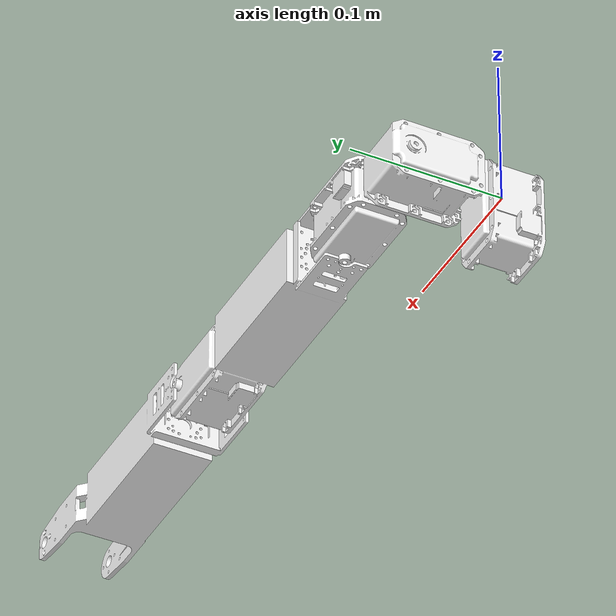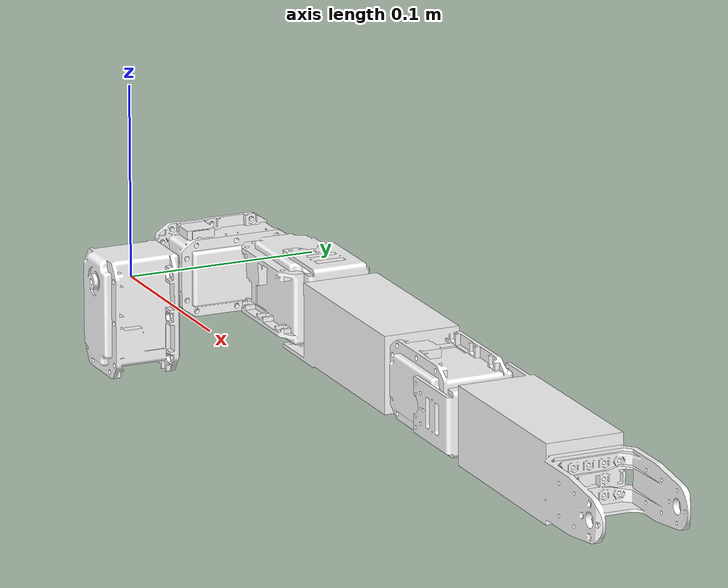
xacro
<?xml version ="1.0"?>
<robot xmlns:xacro="http://www.ros.org/wiki/xacro" name="manipulator">
<!--0.5624 height to start-->
<material name="white">
  <color rgba="1 1 1 1"/>
</material>

<xacro:property name="MXLength" value="0.0611"/>
<xacro:property name="MXWidth" value="0.0402"/>
<xacro:property name="MXDepth" value="0.041"/>

<xacro:property name="MXLengthAxisShort" value="0.013"/>
<xacro:property name="MXLengthAxisLong" value="0.0481"/>

<xacro:property name="MXCouplerThickness" value="0.0025"/>

<xacro:property name="AXLength" value="0.05"/>
<xacro:property name="AXWidth" value="0.032"/>
<xacro:property name="AXDepth" value="0.04"/>

<xacro:property name="LinkLength" value="0.096"/>
<xacro:property name="LinkWidth" value="0.04"/>
<xacro:property name="LinkHeight" value="0.04"/>

<xacro:property name="MXBracketLength" value="0.036"/>

<xacro:property name="AXBracketLength" value="0.052"/>

<xacro:property name="MXBracketCorrection" value="0.002"/>

<!-- http://gazebosim.org/tutorials?tut=inertia&cat=build_robot#Rescalingthemomentofinertiavalues -->
<xacro:property name="MXMass" value="0.165"/>

<xacro:property name="Link1Mass" value="0.265"/>

<xacro:property name="Link2Mass" value="0.265"/>

<!-- MACROS -->

<xacro:macro name="MXInertial" params="trans rpy">
  <inertial>
    <origin xyz="${trans}" rpy="${rpy}" />
    <mass value="${MXMass}" />
    <inertia
      ixx="6.65123572902532E-05"
      ixy="-4.54345384616915E-11"
      ixz="-5.15255173621468E-12"
      iyy="5.68182433930847E-05"
      iyz="-6.73804871717713E-07"
      izz="3.74108886112339E-05"/>
  </inertial>
</xacro:macro>

<xacro:macro name="MXVisual" params="trans rpy">
  <visual>
    <origin xyz="${trans}" rpy="${rpy}"/>
    <geometry>
      <mesh filename="package://arm_imitation/meshes/mx-64.stl" scale="0.001 0.001 0.001"/>
    </geometry>
    <material name="white"/>
  </visual>
</xacro:macro>

<xacro:macro name="MXCollision" params="trans rpy">
    <collision>
      <origin xyz="${trans}" rpy="${rpy}"/>
      <geometry>
        <mesh filename="package://arm_imitation/meshes/mx-64.stl" scale="0.001 0.001 0.001"/>
      </geometry>
    </collision>
</xacro:macro>

<xacro:macro name="Link1Inertial" params="trans rpy">
  <inertial>
    <origin xyz="${trans}" rpy="${rpy}"/>
    <mass value="${Link1Mass}" />
    <inertia
      ixx="0.000608361426086"
      ixy="7.77278472820011E-11"
      ixz="2.27900791642819E-11"
      iyy="6.93532385616405E-05"
      iyz="7.00240819830694E-08"
      izz="0.000605959073862"/>
  </inertial>
</xacro:macro>

<xacro:macro name="Link1Visual" params="trans rpy">
  <visual>
    <origin xyz="${trans}" rpy="${rpy}"/>
    <geometry>
      <mesh filename="package://arm_imitation/meshes/link1.stl" scale="0.001 0.001 0.001"/>
    </geometry>
    <material name="white"/>
  </visual>
</xacro:macro>

<xacro:macro name="Link1Collision" params="trans rpy">
    <collision>
      <origin xyz="${trans}" rpy="${rpy}"/>
      <geometry>
      <mesh filename="package://arm_imitation/meshes/link1.stl" scale="0.001 0.001 0.001"/>
    </geometry>
    </collision>
</xacro:macro>

<xacro:macro name="Link2Inertial" params="trans rpy">
  <inertial>
    <origin xyz="${trans}" rpy="${rpy}"/>
    <mass value="${Link2Mass}" />
    <inertia
      ixx="0.000353833500666"
      ixy="-9.91181241544464E-11"
      ixz="2.17719851471636E-11"
      iyy="7.68817830247818E-05"
      iyz="-6.50168183616403E-07"
      izz="0.000363033715751"/>
  </inertial>
</xacro:macro>

<xacro:macro name="Link2Visual" params="trans rpy">
  <visual>
    <origin xyz="${trans}" rpy="${rpy}"/>
    <geometry>
      <mesh filename="package://arm_imitation/meshes/link2.stl" scale="0.001 0.001 0.001"/>
    </geometry>
    <material name="white"/>
  </visual>
</xacro:macro>

<xacro:macro name="Link2Collision" params="trans rpy">
    <collision>
      <origin xyz="${trans}" rpy="${rpy}"/>
      <geometry>
      <mesh filename="package://arm_imitation/meshes/link2.stl" scale="0.001 0.001 0.001"/>
    </geometry>
    </collision>
</xacro:macro>

<xacro:macro name="RevJoint" params="id trans rpy parent child axis l u v">
    <joint name="${id}" type="revolute">
      <origin xyz="${trans}" rpy="${rpy}"/>
      <parent link="${parent}"/>
      <child link="${child}"/>
      <axis xyz="${axis}"/>
      <limit lower="${l}" upper="${u}" effort="30" velocity="${v}"/>
    </joint>
</xacro:macro>

<xacro:macro name="FxdJoint" params="id trans rpy parent child">
    <joint name="${id}" type="fixed">
      <origin xyz="${trans}"  rpy="${rpy}" />
      <parent link="${parent}"/>
      <child link="${child}"/>
    </joint>
</xacro:macro>

<!-- LINKS -->
<!-- the trans parameter present here is to toggle distance of current object with respect to previous adjacent object i.e. its parent-->

  <link name="shoulder_pitch_motor">
    <xacro:MXInertial trans="0 0 0" rpy="0 0 0 "/>
    <xacro:MXVisual trans="0 0 0" rpy="0 0 0 "/>
    <xacro:MXCollision trans="0 0 0" rpy="0 0 0"/>
  </link>

  <link name="shoulder_roll_motor">
    <xacro:MXInertial trans="0 0 ${MXLengthAxisLong}" rpy="0 0 0 "/>
    <xacro:MXVisual trans="0 0 ${MXLengthAxisLong}" rpy="0 0 0 "/>
    <xacro:MXCollision trans="0 0 ${MXLengthAxisLong}" rpy="0 0 0"/>
  </link>

  <link name="shoulder_yaw_motor">
    <xacro:MXInertial trans="0 0 0" rpy="0 0 0"/>
    <xacro:MXVisual trans="0 0 0" rpy="0.0 0.0 0"/>
    <xacro:MXCollision trans="0 0 0" rpy="0 0 0"/>
  </link>

  <link name="link_1">
    <xacro:Link1Inertial trans="0 0 0" rpy="0 0 0"/>
    <xacro:Link1Visual trans="0 0 0" rpy="0.0 0.0 0"/>
    <xacro:Link1Collision trans="0 0 0" rpy="0 0 0"/>
  </link>

  <link name="link_2">
    <xacro:Link2Inertial trans="0 0 0" rpy="0 0 0"/>
    <xacro:Link2Visual trans="0 0 0" rpy="0.0 0.0 0"/>
    <xacro:Link2Collision trans="0 0 0" rpy="0 0 0"/>
  </link>

 <!-- JOINTS -->
 <!-- the trans parameter present here is to toggle distance of current object with respect to next adjacent object i.e. its child-->

  <xacro:RevJoint id="shoulder_pitch" trans="0 ${MXDepth/2} 0" rpy="-1.57 -1.57 0" parent="shoulder_pitch_motor" child="shoulder_roll_motor" axis="0 0 -1" l="-3.14" u="3.14" v="1.0"/>
  <xacro:RevJoint id="shoulder_roll" trans="0 ${MXLengthAxisLong + MXDepth/2} ${MXLengthAxisLong}" rpy="1.57 1.57 3.14" parent="shoulder_roll_motor" child="shoulder_yaw_motor" axis="0 0 -1" l="-3.14" u="3.14" v="1.0"/>
  <xacro:RevJoint id="shoulder_yaw" trans="0 0 0" rpy="1.57 0 -1.57" parent="shoulder_yaw_motor" child="link_1" axis="1 0 0" l="-1.57" u="1.57" v="1.0"/>
  <xacro:RevJoint id="elbow_pitch" trans="0 ${MXBracketLength + LinkLength + MXLengthAxisLong} 0" rpy="0 -1.57 0" parent="link_1" child="link_2" axis="-1 0 0" l="-1.57" u="1.57" v="1.0"/>

</robot>
